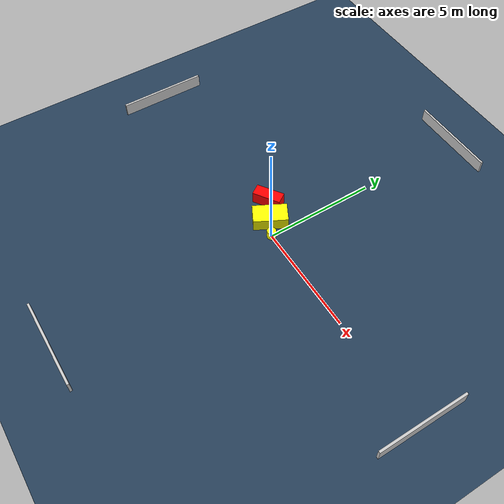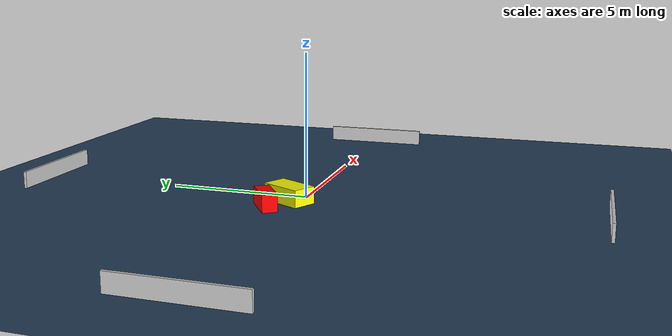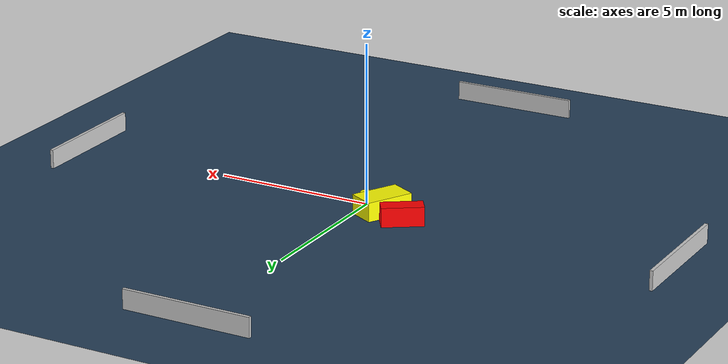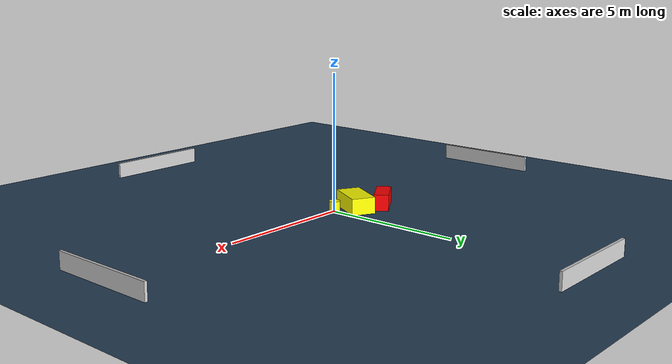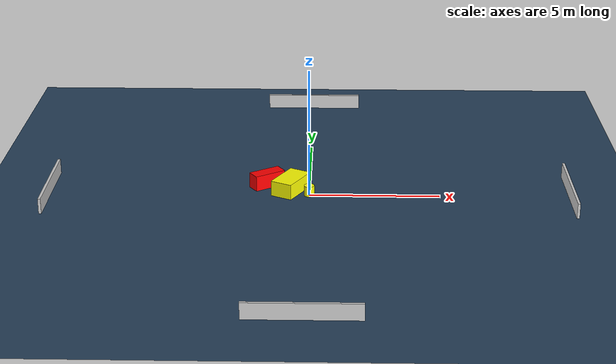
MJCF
<?xml version="1.0" ?>
<mujoco model="generated_environment">
  <option timestep="0.01" integrator="RK4" cone="elliptic"/>
  <default>
    <geom density="1"/>
  </default>
  <asset>
    <texture builtin="gradient" height="3072" name="skybox" rgb1="0.3 0.5 0.7" rgb2="0 0 0" type="skybox" width="512"/>
    <texture builtin="checker" height="300" name="groundplane" rgb1="0.2 0.3 0.4" rgb2="0.1 0.2 0.3" type="2d" width="300"/>
    <material name="groundplane" reflectance="0.2" texrepeat="5 5" texture="groundplane"/>
  </asset>
  <worldbody>
    <light dir="0 0 -1" directional="true" pos="0 0 1.5"/>
    <geom condim="3" friction="0.5 0.005 0.001" material="groundplane" name="floor" pos="0 0 0" size="0 0 0.05" type="plane"/>
    <body name="walls">
      <geom name="wall_1" condim="4" pos="-10.0 0.0 0.3" rgba="0.800000011920929 0.800000011920929 0.800000011920929 1.0" size="0.05 2.0 0.3" type="box"/>
      <geom name="wall_2" condim="4" pos="10.0 0.0 0.3" rgba="0.800000011920929 0.800000011920929 0.800000011920929 1.0" size="0.05 2.0 0.3" type="box"/>
      <geom name="wall_3" condim="4" pos="0.0 -10.0 0.3" rgba="0.800000011920929 0.800000011920929 0.800000011920929 1.0" size="2.0 0.05 0.3" type="box"/>
      <geom name="wall_4" condim="4" pos="0.0 10.0 0.3" rgba="0.800000011920929 0.800000011920929 0.800000011920929 1.0" size="2.0 0.05 0.3" type="box"/>
    </body>
    <body name="robot">
      <joint name="joint_x" type="slide" pos="0 0 0" axis="1 0 0"/>
      <joint name="joint_y" type="slide" pos="0 0 0" axis="0 1 0"/>
      <geom name="robot" type="cylinder" pos="0.0 0.0 0.2" size="0.2 0.2 0.0" mass="5.0" friction="1.0 0.005 0.0001" condim="4" rgba="1.0 1.0 0.0 1.0"/>
    </body>
    <body name="obstacle_1_movable">
      <geom name="obstacle_1_movable" condim="4" pos="-0.719902568334574 0.3856574774121743 0.3" euler="0 0 152.03215475625333" friction="0.0 0.005 0.001" rgba="1.0 1.0 0.0 1.0" size="0.43886295779866735 0.7586082574428956 0.3" type="box" mass="0.1"/>
      <joint type="free"/>
    </body>
    <body name="obstacle_2_static">
      <geom name="obstacle_2_static" condim="4" pos="-1.6558274776312367 0.8860424753363336 0.3" euler="0 0 303.44571601890766" friction="0.0 0.005 0.001" rgba="1.0 0.0 0.0 1.0" size="0.2648369233520885 0.640548996614982 0.3" type="box"/>
    </body>
  </worldbody>
  <actuator>
    <motor name="actuator_x" joint="joint_x" gear="1" ctrlrange="-1 1"/>
    <motor name="actuator_y" joint="joint_y" gear="1" ctrlrange="-1 1"/>
  </actuator>
</mujoco>
